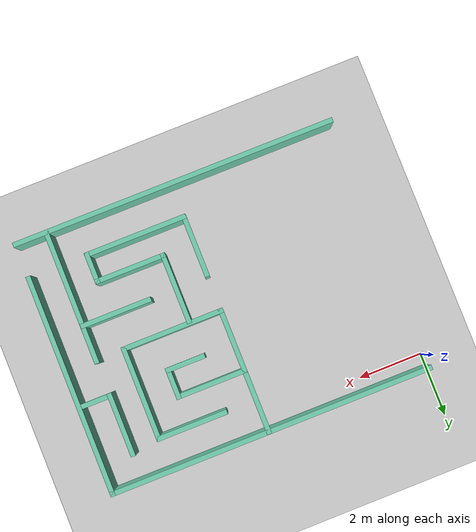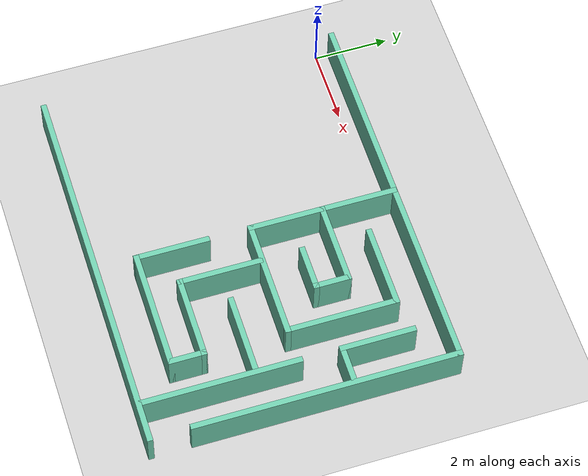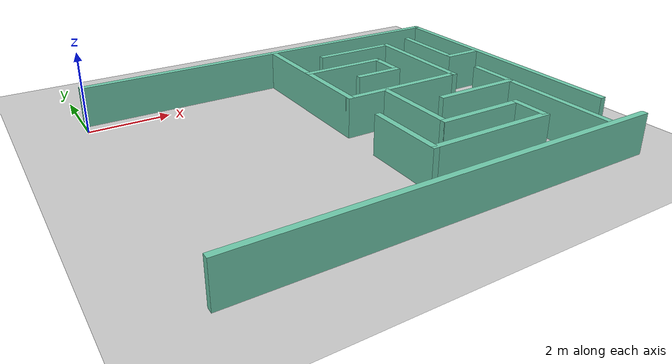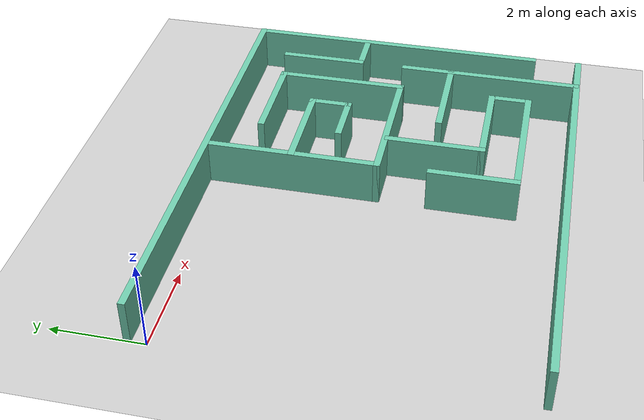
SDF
<sdf version="1.7">
 <world name="default">
  <model name="ground_plane">
   <static>1</static>
   <link name="link">
    <collision name="collision">
     <geometry><plane><normal>0 0 1</normal><size>100 100</size></plane></geometry>
     <surface><friction><ode><mu>100</mu><mu2>50</mu2></ode></friction></surface>
    </collision>
    <visual name="visual">
     <cast_shadows>0</cast_shadows>
     <geometry><plane><normal>0 0 1</normal><size>100 100</size></plane></geometry>
     <material>
      <script><uri>file://media/materials/scripts/gazebo.material</uri><name>Gazebo/Grey</name></script>
     </material>
    </visual>
   </link>
  </model>
  <model name="maze">
   <link name="Wall_195">
    <pose>3.975 0 0 0 0 -1.5708</pose>
    <visual name="Wall_195_Visual">
     <pose>0 0 0.5 0 -0 0</pose>
     <geometry><box><size>10.25 0.15 1</size></box></geometry>
     <material>
      <script><uri>file://media/materials/scripts/gazebo.material</uri><name>Gazebo/Grey</name></script>
      <ambient>0.435294 0.796078 0.67451 1</ambient>
      <shader type="pixel"/>
     </material>
     <meta><layer>0</layer></meta>
    </visual>
    <collision name="Wall_195_Collision">
     <pose>0 0 0.5 0 -0 0</pose>
     <geometry><box><size>10.25 0.15 1</size></box></geometry>
     <surface>
      <friction>
       <ode><mu>1</mu><mu2>1</mu2><fdir1>0 0 0</fdir1><slip1>0</slip1><slip2>0</slip2></ode>
       <torsional>
        <coefficient>1</coefficient>
        <patch_radius>0</patch_radius>
        <surface_radius>0</surface_radius>
        <use_patch_radius>1</use_patch_radius>
        <ode><slip>0</slip></ode>
       </torsional>
      </friction>
      <bounce><restitution_coefficient>0</restitution_coefficient><threshold>1e+06</threshold></bounce>
      <contact>
       <collide_without_contact>0</collide_without_contact>
       <collide_without_contact_bitmask>1</collide_without_contact_bitmask>
       <collide_bitmask>1</collide_bitmask>
       <ode>
        <soft_cfm>0</soft_cfm>
        <soft_erp>0.2</soft_erp>
        <kp>1e+13</kp>
        <kd>1</kd>
        <max_vel>0.01</max_vel>
        <min_depth>0</min_depth>
       </ode>
       <bullet>
        <split_impulse>1</split_impulse>
        <split_impulse_penetration_threshold>-0.01</split_impulse_penetration_threshold>
        <soft_cfm>0</soft_cfm>
        <soft_erp>0.2</soft_erp>
        <kp>1e+13</kp>
        <kd>1</kd>
       </bullet>
      </contact>
     </surface>
    </collision>
   </link>
   <link name="Wall_198">
    <pose>-3.975 0 0 0 -0 1.5708</pose>
    <visual name="Wall_198_Visual">
     <pose>0 0 0.5 0 -0 0</pose>
     <geometry><box><size>10.25 0.15 1</size></box></geometry>
     <material>
      <script><uri>file://media/materials/scripts/gazebo.material</uri><name>Gazebo/Grey</name></script>
      <ambient>0.435294 0.796078 0.67451 1</ambient>
      <shader type="pixel"/>
     </material>
     <meta><layer>0</layer></meta>
    </visual>
    <collision name="Wall_198_Collision">
     <pose>0 0 0.5 0 -0 0</pose>
     <geometry><box><size>10.25 0.15 1</size></box></geometry>
     <surface>
      <friction>
       <ode><mu>1</mu><mu2>1</mu2><fdir1>0 0 0</fdir1><slip1>0</slip1><slip2>0</slip2></ode>
       <torsional>
        <coefficient>1</coefficient>
        <patch_radius>0</patch_radius>
        <surface_radius>0</surface_radius>
        <use_patch_radius>1</use_patch_radius>
        <ode><slip>0</slip></ode>
       </torsional>
      </friction>
      <bounce><restitution_coefficient>0</restitution_coefficient><threshold>1e+06</threshold></bounce>
      <contact>
       <collide_without_contact>0</collide_without_contact>
       <collide_without_contact_bitmask>1</collide_without_contact_bitmask>
       <collide_bitmask>1</collide_bitmask>
       <ode>
        <soft_cfm>0</soft_cfm>
        <soft_erp>0.2</soft_erp>
        <kp>1e+13</kp>
        <kd>1</kd>
        <max_vel>0.01</max_vel>
        <min_depth>0</min_depth>
       </ode>
       <bullet>
        <split_impulse>1</split_impulse>
        <split_impulse_penetration_threshold>-0.01</split_impulse_penetration_threshold>
        <soft_cfm>0</soft_cfm>
        <soft_erp>0.2</soft_erp>
        <kp>1e+13</kp>
        <kd>1</kd>
       </bullet>
      </contact>
     </surface>
    </collision>
   </link>
   <link name="Wall_201">
    <pose>-0.55 5.05 0 0 -0 0</pose>
    <visual name="Wall_201_Visual">
     <pose>0 0 0.5 0 -0 0</pose>
     <geometry><box><size>7 0.15 1</size></box></geometry>
     <material>
      <script><uri>file://media/materials/scripts/gazebo.material</uri><name>Gazebo/Grey</name></script>
      <ambient>0.435294 0.796078 0.67451 1</ambient>
      <shader type="pixel"/>
     </material>
     <meta><layer>0</layer></meta>
    </visual>
    <collision name="Wall_201_Collision">
     <pose>0 0 0.5 0 -0 0</pose>
     <geometry><box><size>7 0.15 1</size></box></geometry>
     <surface>
      <friction>
       <ode><mu>1</mu><mu2>1</mu2><fdir1>0 0 0</fdir1><slip1>0</slip1><slip2>0</slip2></ode>
       <torsional>
        <coefficient>1</coefficient>
        <patch_radius>0</patch_radius>
        <surface_radius>0</surface_radius>
        <use_patch_radius>1</use_patch_radius>
        <ode><slip>0</slip></ode>
       </torsional>
      </friction>
      <bounce><restitution_coefficient>0</restitution_coefficient><threshold>1e+06</threshold></bounce>
      <contact>
       <collide_without_contact>0</collide_without_contact>
       <collide_without_contact_bitmask>1</collide_without_contact_bitmask>
       <collide_bitmask>1</collide_bitmask>
       <ode>
        <soft_cfm>0</soft_cfm>
        <soft_erp>0.2</soft_erp>
        <kp>1e+13</kp>
        <kd>1</kd>
        <max_vel>0.01</max_vel>
        <min_depth>0</min_depth>
       </ode>
       <bullet>
        <split_impulse>1</split_impulse>
        <split_impulse_penetration_threshold>-0.01</split_impulse_penetration_threshold>
        <soft_cfm>0</soft_cfm>
        <soft_erp>0.2</soft_erp>
        <kp>1e+13</kp>
        <kd>1</kd>
       </bullet>
      </contact>
     </surface>
    </collision>
   </link>
   <link name="Wall_204">
    <pose>1.902 4.071 0 0 -0 3.14159</pose>
    <visual name="Wall_204_Visual">
     <pose>0 0 0.5 0 -0 0</pose>
     <geometry><box><size>4.25 0.15 1</size></box></geometry>
     <material>
      <script><uri>file://media/materials/scripts/gazebo.material</uri><name>Gazebo/Grey</name></script>
      <ambient>0.435294 0.796078 0.67451 1</ambient>
      <shader type="pixel"/>
     </material>
     <meta><layer>0</layer></meta>
    </visual>
    <collision name="Wall_204_Collision">
     <pose>0 0 0.5 0 -0 0</pose>
     <geometry><box><size>4.25 0.15 1</size></box></geometry>
     <surface>
      <friction>
       <ode><mu>1</mu><mu2>1</mu2><fdir1>0 0 0</fdir1><slip1>0</slip1><slip2>0</slip2></ode>
       <torsional>
        <coefficient>1</coefficient>
        <patch_radius>0</patch_radius>
        <surface_radius>0</surface_radius>
        <use_patch_radius>1</use_patch_radius>
        <ode><slip>0</slip></ode>
       </torsional>
      </friction>
      <bounce><restitution_coefficient>0</restitution_coefficient><threshold>1e+06</threshold></bounce>
      <contact>
       <collide_without_contact>0</collide_without_contact>
       <collide_without_contact_bitmask>1</collide_without_contact_bitmask>
       <collide_bitmask>1</collide_bitmask>
       <ode>
        <soft_cfm>0</soft_cfm>
        <soft_erp>0.2</soft_erp>
        <kp>1e+13</kp>
        <kd>1</kd>
        <max_vel>0.01</max_vel>
        <min_depth>0</min_depth>
       </ode>
       <bullet>
        <split_impulse>1</split_impulse>
        <split_impulse_penetration_threshold>-0.01</split_impulse_penetration_threshold>
        <soft_cfm>0</soft_cfm>
        <soft_erp>0.2</soft_erp>
        <kp>1e+13</kp>
        <kd>1</kd>
       </bullet>
      </contact>
     </surface>
    </collision>
   </link>
   <link name="Wall_209">
    <pose>-2.173 4.071 0 0 -0 3.14159</pose>
    <visual name="Wall_209_Visual">
     <pose>0 0 0.5 0 -0 0</pose>
     <geometry><box><size>2 0.15 1</size></box></geometry>
     <material>
      <script><uri>file://media/materials/scripts/gazebo.material</uri><name>Gazebo/Grey</name></script>
      <ambient>0.435294 0.796078 0.67451 1</ambient>
      <shader type="pixel"/>
     </material>
     <meta><layer>0</layer></meta>
    </visual>
    <collision name="Wall_209_Collision">
     <pose>0 0 0.5 0 -0 0</pose>
     <geometry><box><size>2 0.15 1</size></box></geometry>
     <surface>
      <friction>
       <ode><mu>1</mu><mu2>1</mu2><fdir1>0 0 0</fdir1><slip1>0</slip1><slip2>0</slip2></ode>
       <torsional>
        <coefficient>1</coefficient>
        <patch_radius>0</patch_radius>
        <surface_radius>0</surface_radius>
        <use_patch_radius>1</use_patch_radius>
        <ode><slip>0</slip></ode>
       </torsional>
      </friction>
      <bounce><restitution_coefficient>0</restitution_coefficient><threshold>1e+06</threshold></bounce>
      <contact>
       <collide_without_contact>0</collide_without_contact>
       <collide_without_contact_bitmask>1</collide_without_contact_bitmask>
       <collide_bitmask>1</collide_bitmask>
       <ode>
        <soft_cfm>0</soft_cfm>
        <soft_erp>0.2</soft_erp>
        <kp>1e+13</kp>
        <kd>1</kd>
        <max_vel>0.01</max_vel>
        <min_depth>0</min_depth>
       </ode>
       <bullet>
        <split_impulse>1</split_impulse>
        <split_impulse_penetration_threshold>-0.01</split_impulse_penetration_threshold>
        <soft_cfm>0</soft_cfm>
        <soft_erp>0.2</soft_erp>
        <kp>1e+13</kp>
        <kd>1</kd>
       </bullet>
      </contact>
     </surface>
    </collision>
   </link>
   <link name="Wall_211">
    <pose>0.975 3.012 0 0 0 -1.5708</pose>
    <visual name="Wall_211_Visual">
     <pose>0 0 0.5 0 -0 0</pose>
     <geometry><box><size>2.25 0.15 1</size></box></geometry>
     <material>
      <script><uri>file://media/materials/scripts/gazebo.material</uri><name>Gazebo/Grey</name></script>
      <ambient>0.435294 0.796078 0.67451 1</ambient>
      <shader type="pixel"/>
     </material>
     <meta><layer>0</layer></meta>
    </visual>
    <collision name="Wall_211_Collision">
     <pose>0 0 0.5 0 -0 0</pose>
     <geometry><box><size>2.25 0.15 1</size></box></geometry>
     <surface>
      <friction>
       <ode><mu>1</mu><mu2>1</mu2><fdir1>0 0 0</fdir1><slip1>0</slip1><slip2>0</slip2></ode>
       <torsional>
        <coefficient>1</coefficient>
        <patch_radius>0</patch_radius>
        <surface_radius>0</surface_radius>
        <use_patch_radius>1</use_patch_radius>
        <ode><slip>0</slip></ode>
       </torsional>
      </friction>
      <bounce><restitution_coefficient>0</restitution_coefficient><threshold>1e+06</threshold></bounce>
      <contact>
       <collide_without_contact>0</collide_without_contact>
       <collide_without_contact_bitmask>1</collide_without_contact_bitmask>
       <collide_bitmask>1</collide_bitmask>
       <ode>
        <soft_cfm>0</soft_cfm>
        <soft_erp>0.2</soft_erp>
        <kp>1e+13</kp>
        <kd>1</kd>
        <max_vel>0.01</max_vel>
        <min_depth>0</min_depth>
       </ode>
       <bullet>
        <split_impulse>1</split_impulse>
        <split_impulse_penetration_threshold>-0.01</split_impulse_penetration_threshold>
        <soft_cfm>0</soft_cfm>
        <soft_erp>0.2</soft_erp>
        <kp>1e+13</kp>
        <kd>1</kd>
       </bullet>
      </contact>
     </surface>
    </collision>
   </link>
   <link name="Wall_214">
    <pose>-2.038 0.084 0 0 -0 0</pose>
    <visual name="Wall_214_Visual">
     <pose>0 0 0.5 0 -0 0</pose>
     <geometry><box><size>4 0.15 1</size></box></geometry>
     <material>
      <script><uri>file://media/materials/scripts/gazebo.material</uri><name>Gazebo/Grey</name></script>
      <ambient>0.435294 0.796078 0.67451 1</ambient>
      <shader type="pixel"/>
     </material>
     <meta><layer>0</layer></meta>
    </visual>
    <collision name="Wall_214_Collision">
     <pose>0 0 0.5 0 -0 0</pose>
     <geometry><box><size>4 0.15 1</size></box></geometry>
     <surface>
      <friction>
       <ode><mu>1</mu><mu2>1</mu2><fdir1>0 0 0</fdir1><slip1>0</slip1><slip2>0</slip2></ode>
       <torsional>
        <coefficient>1</coefficient>
        <patch_radius>0</patch_radius>
        <surface_radius>0</surface_radius>
        <use_patch_radius>1</use_patch_radius>
        <ode><slip>0</slip></ode>
       </torsional>
      </friction>
      <bounce><restitution_coefficient>0</restitution_coefficient><threshold>1e+06</threshold></bounce>
      <contact>
       <collide_without_contact>0</collide_without_contact>
       <collide_without_contact_bitmask>1</collide_without_contact_bitmask>
       <collide_bitmask>1</collide_bitmask>
       <ode>
        <soft_cfm>0</soft_cfm>
        <soft_erp>0.2</soft_erp>
        <kp>1e+13</kp>
        <kd>1</kd>
        <max_vel>0.01</max_vel>
        <min_depth>0</min_depth>
       </ode>
       <bullet>
        <split_impulse>1</split_impulse>
        <split_impulse_penetration_threshold>-0.01</split_impulse_penetration_threshold>
        <soft_cfm>0</soft_cfm>
        <soft_erp>0.2</soft_erp>
        <kp>1e+13</kp>
        <kd>1</kd>
       </bullet>
      </contact>
     </surface>
    </collision>
   </link>
   <link name="Wall_217">
    <pose>-0.113 1.634 0 0 -0 1.5708</pose>
    <visual name="Wall_217_Visual">
     <pose>0 0 0.5 0 -0 0</pose>
     <geometry><box><size>3.25 0.15 1</size></box></geometry>
     <material>
      <script><uri>file://media/materials/scripts/gazebo.material</uri><name>Gazebo/Grey</name></script>
      <ambient>0.435294 0.796078 0.67451 1</ambient>
      <shader type="pixel"/>
     </material>
     <meta><layer>0</layer></meta>
    </visual>
    <collision name="Wall_217_Collision">
     <pose>0 0 0.5 0 -0 0</pose>
     <geometry><box><size>3.25 0.15 1</size></box></geometry>
     <surface>
      <friction>
       <ode><mu>1</mu><mu2>1</mu2><fdir1>0 0 0</fdir1><slip1>0</slip1><slip2>0</slip2></ode>
       <torsional>
        <coefficient>1</coefficient>
        <patch_radius>0</patch_radius>
        <surface_radius>0</surface_radius>
        <use_patch_radius>1</use_patch_radius>
        <ode><slip>0</slip></ode>
       </torsional>
      </friction>
      <bounce><restitution_coefficient>0</restitution_coefficient><threshold>1e+06</threshold></bounce>
      <contact>
       <collide_without_contact>0</collide_without_contact>
       <collide_without_contact_bitmask>1</collide_without_contact_bitmask>
       <collide_bitmask>1</collide_bitmask>
       <ode>
        <soft_cfm>0</soft_cfm>
        <soft_erp>0.2</soft_erp>
        <kp>1e+13</kp>
        <kd>1</kd>
        <max_vel>0.01</max_vel>
        <min_depth>0</min_depth>
       </ode>
       <bullet>
        <split_impulse>1</split_impulse>
        <split_impulse_penetration_threshold>-0.01</split_impulse_penetration_threshold>
        <soft_cfm>0</soft_cfm>
        <soft_erp>0.2</soft_erp>
        <kp>1e+13</kp>
        <kd>1</kd>
       </bullet>
      </contact>
     </surface>
    </collision>
   </link>
   <link name="Wall_218">
    <pose>-1.538 3.184 0 0 -0 3.14159</pose>
    <visual name="Wall_218_Visual">
     <pose>0 0 0.5 0 -0 0</pose>
     <geometry><box><size>3 0.15 1</size></box></geometry>
     <material>
      <script><uri>file://media/materials/scripts/gazebo.material</uri><name>Gazebo/Grey</name></script>
      <ambient>0.435294 0.796078 0.67451 1</ambient>
      <shader type="pixel"/>
     </material>
     <meta><layer>0</layer></meta>
    </visual>
    <collision name="Wall_218_Collision">
     <pose>0 0 0.5 0 -0 0</pose>
     <geometry><box><size>3 0.15 1</size></box></geometry>
     <surface>
      <friction>
       <ode><mu>1</mu><mu2>1</mu2><fdir1>0 0 0</fdir1><slip1>0</slip1><slip2>0</slip2></ode>
       <torsional>
        <coefficient>1</coefficient>
        <patch_radius>0</patch_radius>
        <surface_radius>0</surface_radius>
        <use_patch_radius>1</use_patch_radius>
        <ode><slip>0</slip></ode>
       </torsional>
      </friction>
      <bounce><restitution_coefficient>0</restitution_coefficient><threshold>1e+06</threshold></bounce>
      <contact>
       <collide_without_contact>0</collide_without_contact>
       <collide_without_contact_bitmask>1</collide_without_contact_bitmask>
       <collide_bitmask>1</collide_bitmask>
       <ode>
        <soft_cfm>0</soft_cfm>
        <soft_erp>0.2</soft_erp>
        <kp>1e+13</kp>
        <kd>1</kd>
        <max_vel>0.01</max_vel>
        <min_depth>0</min_depth>
       </ode>
       <bullet>
        <split_impulse>1</split_impulse>
        <split_impulse_penetration_threshold>-0.01</split_impulse_penetration_threshold>
        <soft_cfm>0</soft_cfm>
        <soft_erp>0.2</soft_erp>
        <kp>1e+13</kp>
        <kd>1</kd>
       </bullet>
      </contact>
     </surface>
    </collision>
   </link>
   <link name="Wall_219">
    <pose>-2.963 2.134 0 0 0 -1.5708</pose>
    <visual name="Wall_219_Visual">
     <pose>0 0 0.5 0 -0 0</pose>
     <geometry><box><size>2.25 0.15 1</size></box></geometry>
     <material>
      <script><uri>file://media/materials/scripts/gazebo.material</uri><name>Gazebo/Grey</name></script>
      <ambient>0.435294 0.796078 0.67451 1</ambient>
      <shader type="pixel"/>
     </material>
     <meta><layer>0</layer></meta>
    </visual>
    <collision name="Wall_219_Collision">
     <pose>0 0 0.5 0 -0 0</pose>
     <geometry><box><size>2.25 0.15 1</size></box></geometry>
     <surface>
      <friction>
       <ode><mu>1</mu><mu2>1</mu2><fdir1>0 0 0</fdir1><slip1>0</slip1><slip2>0</slip2></ode>
       <torsional>
        <coefficient>1</coefficient>
        <patch_radius>0</patch_radius>
        <surface_radius>0</surface_radius>
        <use_patch_radius>1</use_patch_radius>
        <ode><slip>0</slip></ode>
       </torsional>
      </friction>
      <bounce><restitution_coefficient>0</restitution_coefficient><threshold>1e+06</threshold></bounce>
      <contact>
       <collide_without_contact>0</collide_without_contact>
       <collide_without_contact_bitmask>1</collide_without_contact_bitmask>
       <collide_bitmask>1</collide_bitmask>
       <ode>
        <soft_cfm>0</soft_cfm>
        <soft_erp>0.2</soft_erp>
        <kp>1e+13</kp>
        <kd>1</kd>
        <max_vel>0.01</max_vel>
        <min_depth>0</min_depth>
       </ode>
       <bullet>
        <split_impulse>1</split_impulse>
        <split_impulse_penetration_threshold>-0.01</split_impulse_penetration_threshold>
        <soft_cfm>0</soft_cfm>
        <soft_erp>0.2</soft_erp>
        <kp>1e+13</kp>
        <kd>1</kd>
       </bullet>
      </contact>
     </surface>
    </collision>
   </link>
   <link name="Wall_221">
    <pose>-2.026 1.14 0 0 -0 1.5708</pose>
    <visual name="Wall_221_Visual">
     <pose>0 0 0.5 0 -0 0</pose>
     <geometry><box><size>2.25 0.15 1</size></box></geometry>
     <material>
      <script><uri>file://media/materials/scripts/gazebo.material</uri><name>Gazebo/Grey</name></script>
      <ambient>0.435294 0.796078 0.67451 1</ambient>
      <shader type="pixel"/>
     </material>
     <meta><layer>0</layer></meta>
    </visual>
    <collision name="Wall_221_Collision">
     <pose>0 0 0.5 0 -0 0</pose>
     <geometry><box><size>2.25 0.15 1</size></box></geometry>
     <surface>
      <friction>
       <ode><mu>1</mu><mu2>1</mu2><fdir1>0 0 0</fdir1><slip1>0</slip1><slip2>0</slip2></ode>
       <torsional>
        <coefficient>1</coefficient>
        <patch_radius>0</patch_radius>
        <surface_radius>0</surface_radius>
        <use_patch_radius>1</use_patch_radius>
        <ode><slip>0</slip></ode>
       </torsional>
      </friction>
      <bounce><restitution_coefficient>0</restitution_coefficient><threshold>1e+06</threshold></bounce>
      <contact>
       <collide_without_contact>0</collide_without_contact>
       <collide_without_contact_bitmask>1</collide_without_contact_bitmask>
       <collide_bitmask>1</collide_bitmask>
       <ode>
        <soft_cfm>0</soft_cfm>
        <soft_erp>0.2</soft_erp>
        <kp>1e+13</kp>
        <kd>1</kd>
        <max_vel>0.01</max_vel>
        <min_depth>0</min_depth>
       </ode>
       <bullet>
        <split_impulse>1</split_impulse>
        <split_impulse_penetration_threshold>-0.01</split_impulse_penetration_threshold>
        <soft_cfm>0</soft_cfm>
        <soft_erp>0.2</soft_erp>
        <kp>1e+13</kp>
        <kd>1</kd>
       </bullet>
      </contact>
     </surface>
    </collision>
   </link>
   <link name="Wall_223">
    <pose>-1.601 2.19 0 0 -0 0</pose>
    <visual name="Wall_223_Visual">
     <pose>0 0 0.5 0 -0 0</pose>
     <geometry><box><size>1 0.15 1</size></box></geometry>
     <material>
      <script><uri>file://media/materials/scripts/gazebo.material</uri><name>Gazebo/Grey</name></script>
      <ambient>0.435294 0.796078 0.67451 1</ambient>
      <shader type="pixel"/>
     </material>
     <meta><layer>0</layer></meta>
    </visual>
    <collision name="Wall_223_Collision">
     <pose>0 0 0.5 0 -0 0</pose>
     <geometry><box><size>1 0.15 1</size></box></geometry>
     <surface>
      <friction>
       <ode><mu>1</mu><mu2>1</mu2><fdir1>0 0 0</fdir1><slip1>0</slip1><slip2>0</slip2></ode>
       <torsional>
        <coefficient>1</coefficient>
        <patch_radius>0</patch_radius>
        <surface_radius>0</surface_radius>
        <use_patch_radius>1</use_patch_radius>
        <ode><slip>0</slip></ode>
       </torsional>
      </friction>
      <bounce><restitution_coefficient>0</restitution_coefficient><threshold>1e+06</threshold></bounce>
      <contact>
       <collide_without_contact>0</collide_without_contact>
       <collide_without_contact_bitmask>1</collide_without_contact_bitmask>
       <collide_bitmask>1</collide_bitmask>
       <ode>
        <soft_cfm>0</soft_cfm>
        <soft_erp>0.2</soft_erp>
        <kp>1e+13</kp>
        <kd>1</kd>
        <max_vel>0.01</max_vel>
        <min_depth>0</min_depth>
       </ode>
       <bullet>
        <split_impulse>1</split_impulse>
        <split_impulse_penetration_threshold>-0.01</split_impulse_penetration_threshold>
        <soft_cfm>0</soft_cfm>
        <soft_erp>0.2</soft_erp>
        <kp>1e+13</kp>
        <kd>1</kd>
       </bullet>
      </contact>
     </surface>
    </collision>
   </link>
   <link name="Wall_224">
    <pose>-1.176 1.64 0 0 0 -1.5708</pose>
    <visual name="Wall_224_Visual">
     <pose>0 0 0.5 0 -0 0</pose>
     <geometry><box><size>1.25 0.15 1</size></box></geometry>
     <material>
      <script><uri>file://media/materials/scripts/gazebo.material</uri><name>Gazebo/Grey</name></script>
      <ambient>0.435294 0.796078 0.67451 1</ambient>
      <shader type="pixel"/>
     </material>
     <meta><layer>0</layer></meta>
    </visual>
    <collision name="Wall_224_Collision">
     <pose>0 0 0.5 0 -0 0</pose>
     <geometry><box><size>1.25 0.15 1</size></box></geometry>
     <surface>
      <friction>
       <ode><mu>1</mu><mu2>1</mu2><fdir1>0 0 0</fdir1><slip1>0</slip1><slip2>0</slip2></ode>
       <torsional>
        <coefficient>1</coefficient>
        <patch_radius>0</patch_radius>
        <surface_radius>0</surface_radius>
        <use_patch_radius>1</use_patch_radius>
        <ode><slip>0</slip></ode>
       </torsional>
      </friction>
      <bounce><restitution_coefficient>0</restitution_coefficient><threshold>1e+06</threshold></bounce>
      <contact>
       <collide_without_contact>0</collide_without_contact>
       <collide_without_contact_bitmask>1</collide_without_contact_bitmask>
       <collide_bitmask>1</collide_bitmask>
       <ode>
        <soft_cfm>0</soft_cfm>
        <soft_erp>0.2</soft_erp>
        <kp>1e+13</kp>
        <kd>1</kd>
        <max_vel>0.01</max_vel>
        <min_depth>0</min_depth>
       </ode>
       <bullet>
        <split_impulse>1</split_impulse>
        <split_impulse_penetration_threshold>-0.01</split_impulse_penetration_threshold>
        <soft_cfm>0</soft_cfm>
        <soft_erp>0.2</soft_erp>
        <kp>1e+13</kp>
        <kd>1</kd>
       </bullet>
      </contact>
     </surface>
    </collision>
   </link>
   <link name="Wall_226">
    <pose>1.002 1.081 0 0 -0 0</pose>
    <visual name="Wall_226_Visual">
     <pose>0 0 0.5 0 -0 0</pose>
     <geometry><box><size>2.25 0.15 1</size></box></geometry>
     <material>
      <script><uri>file://media/materials/scripts/gazebo.material</uri><name>Gazebo/Grey</name></script>
      <ambient>0.435294 0.796078 0.67451 1</ambient>
      <shader type="pixel"/>
     </material>
     <meta><layer>0</layer></meta>
    </visual>
    <collision name="Wall_226_Collision">
     <pose>0 0 0.5 0 -0 0</pose>
     <geometry><box><size>2.25 0.15 1</size></box></geometry>
     <surface>
      <friction>
       <ode><mu>1</mu><mu2>1</mu2><fdir1>0 0 0</fdir1><slip1>0</slip1><slip2>0</slip2></ode>
       <torsional>
        <coefficient>1</coefficient>
        <patch_radius>0</patch_radius>
        <surface_radius>0</surface_radius>
        <use_patch_radius>1</use_patch_radius>
        <ode><slip>0</slip></ode>
       </torsional>
      </friction>
      <bounce><restitution_coefficient>0</restitution_coefficient><threshold>1e+06</threshold></bounce>
      <contact>
       <collide_without_contact>0</collide_without_contact>
       <collide_without_contact_bitmask>1</collide_without_contact_bitmask>
       <collide_bitmask>1</collide_bitmask>
       <ode>
        <soft_cfm>0</soft_cfm>
        <soft_erp>0.2</soft_erp>
        <kp>1e+13</kp>
        <kd>1</kd>
        <max_vel>0.01</max_vel>
        <min_depth>0</min_depth>
       </ode>
       <bullet>
        <split_impulse>1</split_impulse>
        <split_impulse_penetration_threshold>-0.01</split_impulse_penetration_threshold>
        <soft_cfm>0</soft_cfm>
        <soft_erp>0.2</soft_erp>
        <kp>1e+13</kp>
        <kd>1</kd>
       </bullet>
      </contact>
     </surface>
    </collision>
   </link>
   <link name="Wall_227">
    <pose>2.052 2.131 0 0 -0 1.5708</pose>
    <visual name="Wall_227_Visual">
     <pose>0 0 0.5 0 -0 0</pose>
     <geometry><box><size>2.25 0.15 1</size></box></geometry>
     <material>
      <script><uri>file://media/materials/scripts/gazebo.material</uri><name>Gazebo/Grey</name></script>
      <ambient>0.435294 0.796078 0.67451 1</ambient>
      <shader type="pixel"/>
     </material>
     <meta><layer>0</layer></meta>
    </visual>
    <collision name="Wall_227_Collision">
     <pose>0 0 0.5 0 -0 0</pose>
     <geometry><box><size>2.25 0.15 1</size></box></geometry>
     <surface>
      <friction>
       <ode><mu>1</mu><mu2>1</mu2><fdir1>0 0 0</fdir1><slip1>0</slip1><slip2>0</slip2></ode>
       <torsional>
        <coefficient>1</coefficient>
        <patch_radius>0</patch_radius>
        <surface_radius>0</surface_radius>
        <use_patch_radius>1</use_patch_radius>
        <ode><slip>0</slip></ode>
       </torsional>
      </friction>
      <bounce><restitution_coefficient>0</restitution_coefficient><threshold>1e+06</threshold></bounce>
      <contact>
       <collide_without_contact>0</collide_without_contact>
       <collide_without_contact_bitmask>1</collide_without_contact_bitmask>
       <collide_bitmask>1</collide_bitmask>
       <ode>
        <soft_cfm>0</soft_cfm>
        <soft_erp>0.2</soft_erp>
        <kp>1e+13</kp>
        <kd>1</kd>
        <max_vel>0.01</max_vel>
        <min_depth>0</min_depth>
       </ode>
       <bullet>
        <split_impulse>1</split_impulse>
        <split_impulse_penetration_threshold>-0.01</split_impulse_penetration_threshold>
        <soft_cfm>0</soft_cfm>
        <soft_erp>0.2</soft_erp>
        <kp>1e+13</kp>
        <kd>1</kd>
       </bullet>
      </contact>
     </surface>
    </collision>
   </link>
   <link name="Wall_228">
    <pose>2.477 3.181 0 0 -0 0</pose>
    <visual name="Wall_228_Visual">
     <pose>0 0 0.5 0 -0 0</pose>
     <geometry><box><size>1 0.15 1</size></box></geometry>
     <material>
      <script><uri>file://media/materials/scripts/gazebo.material</uri><name>Gazebo/Grey</name></script>
      <ambient>0.435294 0.796078 0.67451 1</ambient>
      <shader type="pixel"/>
     </material>
     <meta><layer>0</layer></meta>
    </visual>
    <collision name="Wall_228_Collision">
     <pose>0 0 0.5 0 -0 0</pose>
     <geometry><box><size>1 0.15 1</size></box></geometry>
     <surface>
      <friction>
       <ode><mu>1</mu><mu2>1</mu2><fdir1>0 0 0</fdir1><slip1>0</slip1><slip2>0</slip2></ode>
       <torsional>
        <coefficient>1</coefficient>
        <patch_radius>0</patch_radius>
        <surface_radius>0</surface_radius>
        <use_patch_radius>1</use_patch_radius>
        <ode><slip>0</slip></ode>
       </torsional>
      </friction>
      <bounce><restitution_coefficient>0</restitution_coefficient><threshold>1e+06</threshold></bounce>
      <contact>
       <collide_without_contact>0</collide_without_contact>
       <collide_without_contact_bitmask>1</collide_without_contact_bitmask>
       <collide_bitmask>1</collide_bitmask>
       <ode>
        <soft_cfm>0</soft_cfm>
        <soft_erp>0.2</soft_erp>
        <kp>1e+13</kp>
        <kd>1</kd>
        <max_vel>0.01</max_vel>
        <min_depth>0</min_depth>
       </ode>
       <bullet>
        <split_impulse>1</split_impulse>
        <split_impulse_penetration_threshold>-0.01</split_impulse_penetration_threshold>
        <soft_cfm>0</soft_cfm>
        <soft_erp>0.2</soft_erp>
        <kp>1e+13</kp>
        <kd>1</kd>
       </bullet>
      </contact>
     </surface>
    </collision>
   </link>
   <link name="Wall_229">
    <pose>2.902 1.631 0 0 0 -1.5708</pose>
    <visual name="Wall_229_Visual">
     <pose>0 0 0.5 0 -0 0</pose>
     <geometry><box><size>3.25 0.15 1</size></box></geometry>
     <material>
      <script><uri>file://media/materials/scripts/gazebo.material</uri><name>Gazebo/Grey</name></script>
      <ambient>0.435294 0.796078 0.67451 1</ambient>
      <shader type="pixel"/>
     </material>
     <meta><layer>0</layer></meta>
    </visual>
    <collision name="Wall_229_Collision">
     <pose>0 0 0.5 0 -0 0</pose>
     <geometry><box><size>3.25 0.15 1</size></box></geometry>
     <surface>
      <friction>
       <ode><mu>1</mu><mu2>1</mu2><fdir1>0 0 0</fdir1><slip1>0</slip1><slip2>0</slip2></ode>
       <torsional>
        <coefficient>1</coefficient>
        <patch_radius>0</patch_radius>
        <surface_radius>0</surface_radius>
        <use_patch_radius>1</use_patch_radius>
        <ode><slip>0</slip></ode>
       </torsional>
      </friction>
      <bounce><restitution_coefficient>0</restitution_coefficient><threshold>1e+06</threshold></bounce>
      <contact>
       <collide_without_contact>0</collide_without_contact>
       <collide_without_contact_bitmask>1</collide_without_contact_bitmask>
       <collide_bitmask>1</collide_bitmask>
       <ode>
        <soft_cfm>0</soft_cfm>
        <soft_erp>0.2</soft_erp>
        <kp>1e+13</kp>
        <kd>1</kd>
        <max_vel>0.01</max_vel>
        <min_depth>0</min_depth>
       </ode>
       <bullet>
        <split_impulse>1</split_impulse>
        <split_impulse_penetration_threshold>-0.01</split_impulse_penetration_threshold>
        <soft_cfm>0</soft_cfm>
        <soft_erp>0.2</soft_erp>
        <kp>1e+13</kp>
        <kd>1</kd>
       </bullet>
      </contact>
     </surface>
    </collision>
   </link>
   <link name="Wall_230">
    <pose>1.977 0.081 0 0 -0 3.14159</pose>
    <visual name="Wall_230_Visual">
     <pose>0 0 0.5 0 -0 0</pose>
     <geometry><box><size>2 0.15 1</size></box></geometry>
     <material>
      <script><uri>file://media/materials/scripts/gazebo.material</uri><name>Gazebo/Grey</name></script>
      <ambient>0.435294 0.796078 0.67451 1</ambient>
      <shader type="pixel"/>
     </material>
     <meta><layer>0</layer></meta>
    </visual>
    <collision name="Wall_230_Collision">
     <pose>0 0 0.5 0 -0 0</pose>
     <geometry><box><size>2 0.15 1</size></box></geometry>
     <surface>
      <friction>
       <ode><mu>1</mu><mu2>1</mu2><fdir1>0 0 0</fdir1><slip1>0</slip1><slip2>0</slip2></ode>
       <torsional>
        <coefficient>1</coefficient>
        <patch_radius>0</patch_radius>
        <surface_radius>0</surface_radius>
        <use_patch_radius>1</use_patch_radius>
        <ode><slip>0</slip></ode>
       </torsional>
      </friction>
      <bounce><restitution_coefficient>0</restitution_coefficient><threshold>1e+06</threshold></bounce>
      <contact>
       <collide_without_contact>0</collide_without_contact>
       <collide_without_contact_bitmask>1</collide_without_contact_bitmask>
       <collide_bitmask>1</collide_bitmask>
       <ode>
        <soft_cfm>0</soft_cfm>
        <soft_erp>0.2</soft_erp>
        <kp>1e+13</kp>
        <kd>1</kd>
        <max_vel>0.01</max_vel>
        <min_depth>0</min_depth>
       </ode>
       <bullet>
        <split_impulse>1</split_impulse>
        <split_impulse_penetration_threshold>-0.01</split_impulse_penetration_threshold>
        <soft_cfm>0</soft_cfm>
        <soft_erp>0.2</soft_erp>
        <kp>1e+13</kp>
        <kd>1</kd>
       </bullet>
      </contact>
     </surface>
    </collision>
   </link>
   <link name="Wall_267">
    <pose>-1.248 4.496 0 0 -0 1.5708</pose>
    <visual name="Wall_267_Visual">
     <pose>0 0 0.5 0 -0 0</pose>
     <geometry><box><size>1 0.15 1</size></box></geometry>
     <material>
      <script><uri>file://media/materials/scripts/gazebo.material</uri><name>Gazebo/Grey</name></script>
      <ambient>0.435294 0.796078 0.67451 1</ambient>
      <shader type="pixel"/>
     </material>
     <meta><layer>0</layer></meta>
    </visual>
    <collision name="Wall_267_Collision">
     <pose>0 0 0.5 0 -0 0</pose>
     <geometry><box><size>1 0.15 1</size></box></geometry>
     <surface>
      <friction>
       <ode><mu>1</mu><mu2>1</mu2><fdir1>0 0 0</fdir1><slip1>0</slip1><slip2>0</slip2></ode>
       <torsional>
        <coefficient>1</coefficient>
        <patch_radius>0</patch_radius>
        <surface_radius>0</surface_radius>
        <use_patch_radius>1</use_patch_radius>
        <ode><slip>0</slip></ode>
       </torsional>
      </friction>
      <bounce><restitution_coefficient>0</restitution_coefficient><threshold>1e+06</threshold></bounce>
      <contact>
       <collide_without_contact>0</collide_without_contact>
       <collide_without_contact_bitmask>1</collide_without_contact_bitmask>
       <collide_bitmask>1</collide_bitmask>
       <ode>
        <soft_cfm>0</soft_cfm>
        <soft_erp>0.2</soft_erp>
        <kp>1e+13</kp>
        <kd>1</kd>
        <max_vel>0.01</max_vel>
        <min_depth>0</min_depth>
       </ode>
       <bullet>
        <split_impulse>1</split_impulse>
        <split_impulse_penetration_threshold>-0.01</split_impulse_penetration_threshold>
        <soft_cfm>0</soft_cfm>
        <soft_erp>0.2</soft_erp>
        <kp>1e+13</kp>
        <kd>1</kd>
       </bullet>
      </contact>
     </surface>
    </collision>
   </link>
   <static>1</static>
   <pose>5.11912 -3.57981 0 0 -0 -1.57214</pose>
  </model>
 </world>
</sdf>
